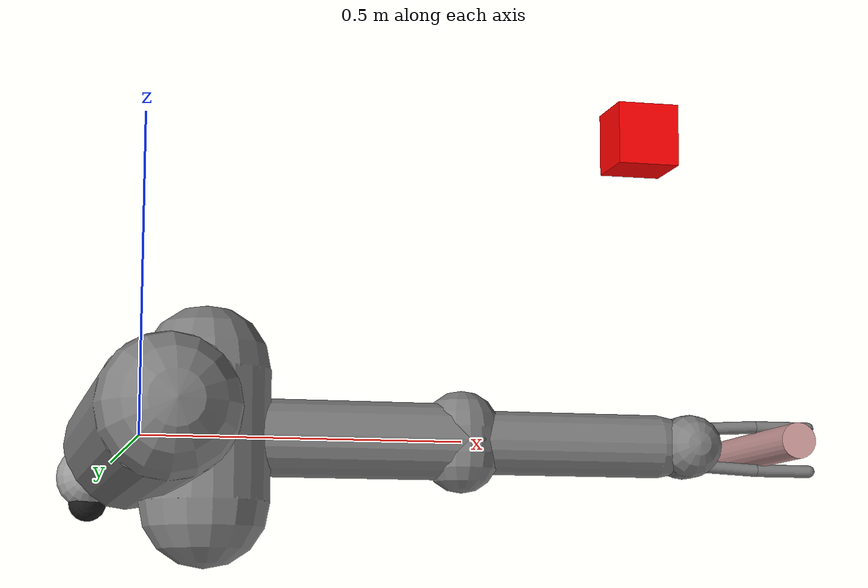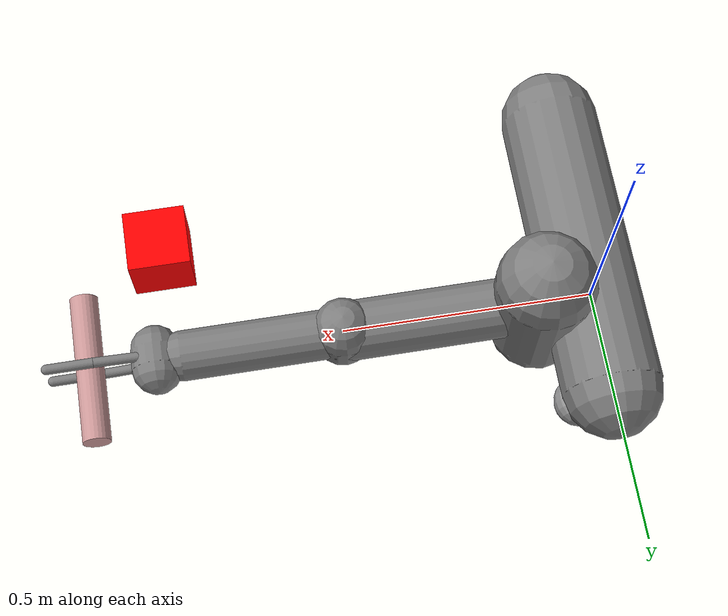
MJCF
<mujoco model="arm3d">

    <compiler inertiafromgeom="true" angle="radian" coordinate="local" />
    <option timestep="0.01" gravity="0 0 0" iterations="20" integrator="RK4" />
    <default>
        <joint armature="0.04" damping="1" limited="true" />
        <geom friction=".5 .1 .1" margin="0.002" condim="1" contype="0" conaffinity="0" />
    </default>

    <worldbody>
        <body name="r_shoulder_pan_link" pos="0 0 0" zaxis="0 100 0">
            <geom name="e1" type="sphere" rgba="0.6 0.6 0.6 1" pos="-0.06 0.05 0.2" size="0.05" />
            <geom name="e2" type="sphere" rgba="0.6 0.6 0.6 1" pos=" 0.06 0.05 0.2" size="0.05" />
            <geom name="e1p" type="sphere" rgba="0.1 0.1 0.1 1" pos="-0.06 0.09 0.2" size="0.03" />
            <geom name="e2p" type="sphere" rgba="0.1 0.1 0.1 1" pos=" 0.06 0.09 0.2" size="0.03" />
            <geom name="sp" type="capsule" fromto="0 0 -0.4 0 0 0.2" size="0.1" />
            <joint name="r_shoulder_pan_joint" type="hinge" pos="0 0 0" axis="0 0 1" range="-2.2854 1.714602" damping="10.0" />

            <body name="r_shoulder_lift_link" pos="0.1 0 0">
                <geom name="sl" type="capsule" fromto="0 -0.1 0 0 0.1 0" size="0.1" />
                <joint name="r_shoulder_lift_joint" type="hinge" pos="0 0 0" axis="0 1 0" range="-0.5236 1.3963" damping="10.0" />

                <body name="r_upper_arm_roll_link" pos="0 0 0">
                    <geom name="uar" type="capsule" fromto="-0.1 0 0 0.1 0 0" size="0.02" />
                    <joint name="r_upper_arm_roll_joint" type="hinge" pos="0 0 0" axis="1 0 0" range="-3.9 0.8" damping="0.1" />

                    <body name="r_upper_arm_link" pos="0 0 0">
                        <geom name="ua" type="capsule" fromto="0 0 0 0.4 0 0" size="0.06" />

                        <body name="r_elbow_flex_link" pos="0.4 0 0">
                            <geom name="ef" type="capsule" fromto="0 -0.02 0 0.0 0.02 0" size="0.06" />
                            <joint name="r_elbow_flex_joint" type="hinge" pos="0 0 0" axis="0 1 0" range="-2.3213 0" damping="1.0" />

                            <body name="r_forearm_roll_link" pos="0 0 0">
                                <geom name="fr" type="capsule" fromto="-0.1 0 0 0.1 0 0" size="0.02" />
                                <joint name="r_forearm_roll_joint" type="hinge" limited="false" pos="0 0 0" axis="1 0 0" damping=".1" />

                                <body name="r_forearm_link" pos="0 0 0">
                                    <geom name="fa" type="capsule" fromto="0 0 0 0.321 0 0" size="0.05" />

                                    <body name="r_wrist_flex_link" pos="0.321 0 0">
                                        <geom name="wf" type="capsule" fromto="0 -0.02 0 0 0.02 0" size="0.01" />
                                        <joint name="r_wrist_flex_joint" type="hinge" pos="0 0 0" axis="0 1 0" range="-2.094 0" damping=".1" />

                                        <body name="r_wrist_roll_link" pos="0 0 0">
                                            <geom name="wr" type="capsule" fromto="-0.02 0 0 0.02 0 0" size="0.01" />
                                            <joint name="r_wrist_roll_joint" type="hinge" pos="0 0 0" limited="false" axis="1 0 0" damping="0.1" />

                                            <body name="r_gripper_palm_link" pos="0 0 0">
                                                <geom name="pl" type="capsule" fromto="0.05 0 -0.02 0.05 0 0.02" size="0.05" />

                                                <body name="r_gripper_tool_frame" pos="0.18 0 0">
                                                    <site name="leg_bottom" pos="0 0 0" size="0.01" />

                                                    <body name="ball" pos="0 0 0">
                                                        <geom name="ball_geom" rgba="0.8 0.6 0.6 1" type="cylinder" fromto="0 0 -0.15 0 0 0.15" size="0.028" density="2000" contype="2" conaffinity="1" />
                                                    </body>
                                                </body>

                                                <body name="r_gripper_l_finger_link" pos="0.07691 0.03 0">
                                                    <geom name="gf3" type="capsule" fromto="0 0 0 0.09137 0.00495 0" size="0.01" />

                                                    <body name="r_gripper_l_finger_tip_link" pos="0.09137 0.00495 0">
                                                        <geom name="gf4" type="capsule" fromto="0 0 0 0.09137 0.0 0" size="0.01" />
                                                    </body>
                                                </body>

                                                <body name="r_gripper_r_finger_link" pos="0.07691 -0.03 0">
                                                    <geom name="gf1" type="capsule" fromto="0 0 0 0.09137 -0.00495 0" size="0.01" />

                                                    <body name="r_gripper_r_finger_tip_link" pos="0.09137 -0.00495 0">
                                                        <geom name="gf2" type="capsule" fromto="0 0 0 0.09137 0.0 0" size="0.01" />
                                                    </body>
                                                </body>
                                            </body>
                                        </body>
                                    </body>
                                </body>
                            </body>
                        </body>
                    </body>
                </body>
            </body>
        </body>

        <body name="goalred" pos="0.8 0.0 0.5">
            <geom rgba="1. 0. 0. 1" type="box" size="0.05 0.05 0.05" density='0.00001' contype="0" conaffinity="0"/>
            <site name="goal pos1" pos="0 0 0" size="0.01" />
        </body>

        <body name="goalgreen" pos="0.8 0.0 0.5">
            <geom rgba="0. 0.5 0. 1" type="box" size="0.05 0.05 0.05" density='0.00001' contype="0" conaffinity="0"/>
            <site name="goal pos2" pos="0 0 0" size="0.01" />
        </body>

        <body name="goalyellow" pos="0.8 0.0 0.5">
            <geom rgba="1. 1. 0. 1" type="box" size="0.05 0.05 0.05" density='0.00001' contype="0" conaffinity="0"/>
            <site name="goal pos3" pos="0 0 0" size="0.01" />
        </body>

        <body name="goalblack" pos="0.8 0.0 0.5">
            <geom rgba="0. 0. 0. 1" type="box" size="0.05 0.05 0.05" density='0.00001' contype="0" conaffinity="0"/>
            <site name="goal pos4" pos="0 0 0" size="0.01" />
        </body>

        <body name="goalmagenta" pos="0.8 0.0 0.5">
            <geom rgba="1. 0. 1. 1" type="box" size="0.05 0.05 0.05" density='0.00001' contype="0" conaffinity="0"/>
            <site name="goal pos5" pos="0 0 0" size="0.01" />
        </body>

        <body name="goalcyan" pos="0.8 0.0 0.5">
            <geom rgba="0. 1. 1. 1" type="box" size="0.05 0.05 0.05" density='0.00001' contype="0" conaffinity="0"/>
            <site name="goal pos6" pos="0 0 0" size="0.01" />
        </body>
    </worldbody>

    <actuator>
        <motor joint="r_shoulder_pan_joint" ctrlrange="-100.0 100.0" ctrllimited="true" />
        <motor joint="r_shoulder_lift_joint" ctrlrange="-100.0 100.0" ctrllimited="true" />
        <motor joint="r_upper_arm_roll_joint" ctrlrange="-100.0 100.0" ctrllimited="true" />
        <motor joint="r_elbow_flex_joint" ctrlrange="-100.0 100.0" ctrllimited="true" />
        <motor joint="r_forearm_roll_joint" ctrlrange="-100.0 100.0" ctrllimited="true" />
        <motor joint="r_wrist_flex_joint" ctrlrange="-100.0 100.0" ctrllimited="true" />
        <motor joint="r_wrist_roll_joint" ctrlrange="-100.0 100.0" ctrllimited="true" />
    </actuator>

</mujoco>
